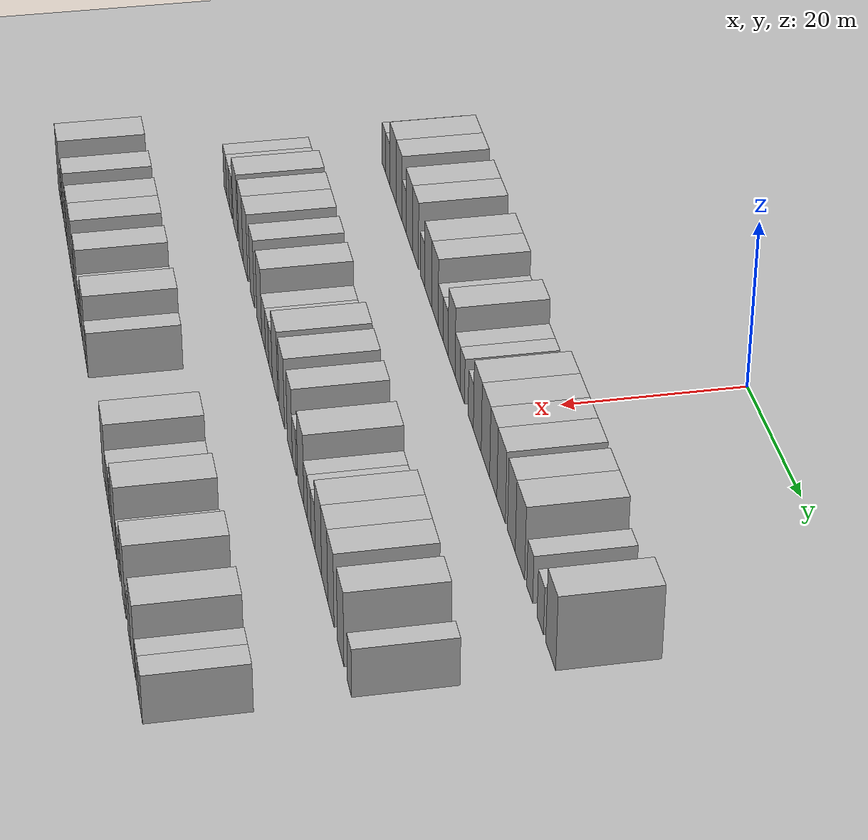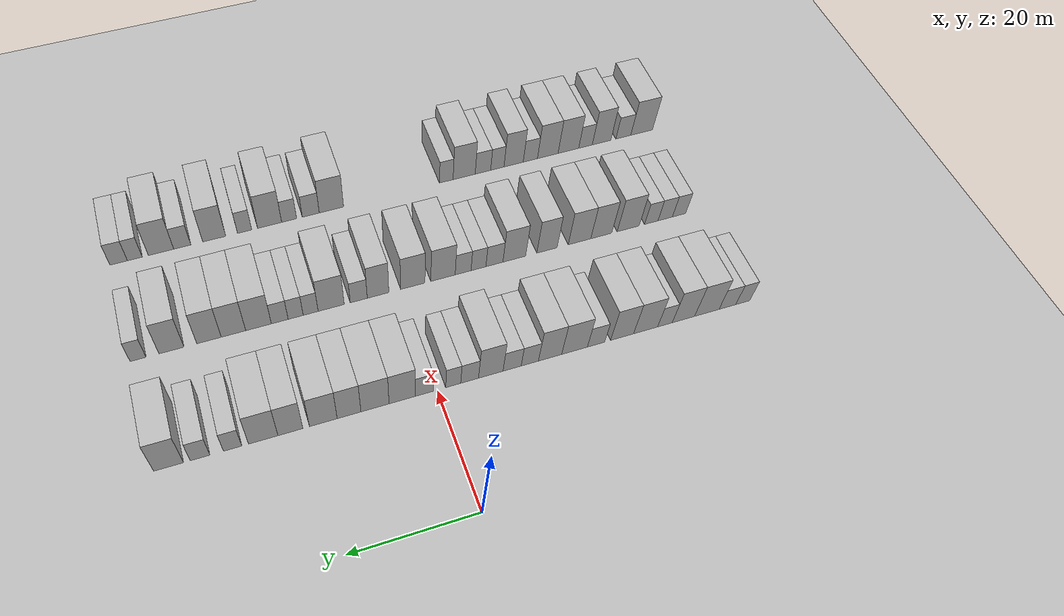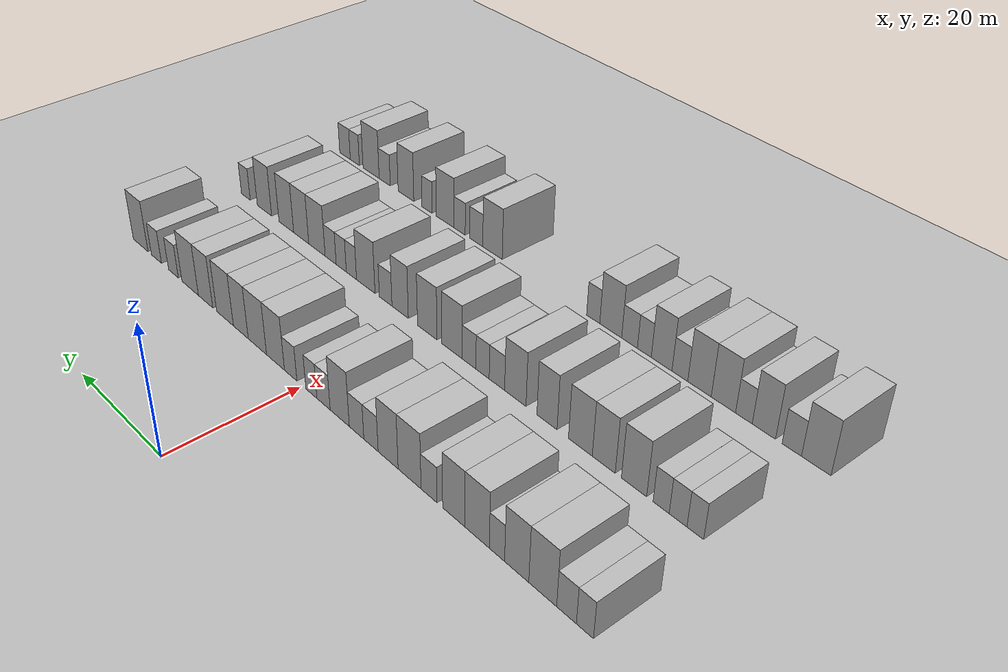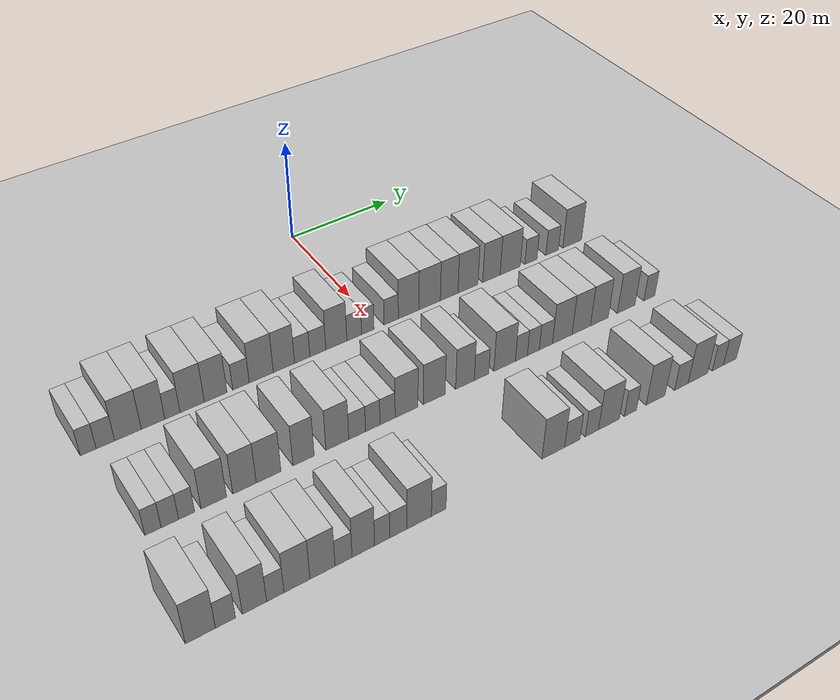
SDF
<sdf version="1.6">
 <world name="default">
  <include><name>ground_plane_1</name><uri>model://HANNAS_ground_plane</uri></include>
  <include>
   <name>ground_plane_2</name>
   <uri>model://HANNAS_ground_plane</uri>
   <pose>100 0 0  0 0 0</pose>
  </include>
  <model name="building_47">
   <static>1</static>
   <pose>25.0000 -51.4652 0 0.000000 0.000000 0.000000</pose>
   <link name="link">
    <pose>0 0 3.00 0 0 0</pose>
    <collision name="collision"><geometry><box><size>10.0000 2.5151 6.0000</size></box></geometry></collision>
    <visual name="visual">
     <cast_shadows>0</cast_shadows>
     <geometry><box><size>10.0000 2.5151 6.0000</size></box></geometry>
     <material>
      <script>
       <uri>model://HANNAS_wall/materials/scripts</uri>
       <uri>model://HANNAS_wall/materials/textures</uri>
       <name>vrc/HANNAS_wall</name>
      </script>
     </material>
    </visual>
   </link>
  </model>
  <model name="building_48">
   <static>1</static>
   <pose>25.0000 -48.7273 0 0.000000 0.000000 0.000000</pose>
   <link name="link">
    <pose>0 0 3.00 0 0 0</pose>
    <collision name="collision"><geometry><box><size>10.0000 2.9607 6.0000</size></box></geometry></collision>
    <visual name="visual">
     <cast_shadows>0</cast_shadows>
     <geometry><box><size>10.0000 2.9607 6.0000</size></box></geometry>
     <material>
      <script>
       <uri>model://HANNAS_wall/materials/scripts</uri>
       <uri>model://HANNAS_wall/materials/textures</uri>
       <name>vrc/HANNAS_wall</name>
      </script>
     </material>
    </visual>
   </link>
  </model>
  <model name="building_49">
   <static>1</static>
   <pose>25.0000 -45.0810 0 0.000000 0.000000 0.000000</pose>
   <link name="link">
    <pose>0 0 4.50 0 0 0</pose>
    <collision name="collision"><geometry><box><size>10.0000 4.3319 9.0000</size></box></geometry></collision>
    <visual name="visual">
     <cast_shadows>0</cast_shadows>
     <geometry><box><size>10.0000 4.3319 9.0000</size></box></geometry>
     <material>
      <script>
       <uri>model://HANNAS_wall/materials/scripts</uri>
       <uri>model://HANNAS_wall/materials/textures</uri>
       <name>vrc/HANNAS_wall</name>
      </script>
     </material>
    </visual>
   </link>
  </model>
  <model name="building_50">
   <static>1</static>
   <pose>25.0000 -40.9678 0 0.000000 0.000000 0.000000</pose>
   <link name="link">
    <pose>0 0 4.50 0 0 0</pose>
    <collision name="collision"><geometry><box><size>10.0000 3.8946 9.0000</size></box></geometry></collision>
    <visual name="visual">
     <cast_shadows>0</cast_shadows>
     <geometry><box><size>10.0000 3.8946 9.0000</size></box></geometry>
     <material>
      <script>
       <uri>model://HANNAS_wall/materials/scripts</uri>
       <uri>model://HANNAS_wall/materials/textures</uri>
       <name>vrc/HANNAS_wall</name>
      </script>
     </material>
    </visual>
   </link>
  </model>
  <model name="building_51">
   <static>1</static>
   <pose>25.0000 -37.7538 0 0.000000 0.000000 0.000000</pose>
   <link name="link">
    <pose>0 0 3.00 0 0 0</pose>
    <collision name="collision"><geometry><box><size>10.0000 2.5332 6.0000</size></box></geometry></collision>
    <visual name="visual">
     <cast_shadows>0</cast_shadows>
     <geometry><box><size>10.0000 2.5332 6.0000</size></box></geometry>
     <material>
      <script>
       <uri>model://HANNAS_wall/materials/scripts</uri>
       <uri>model://HANNAS_wall/materials/textures</uri>
       <name>vrc/HANNAS_wall</name>
      </script>
     </material>
    </visual>
   </link>
  </model>
  <model name="building_52">
   <static>1</static>
   <pose>25.0000 -34.4127 0 0.000000 0.000000 0.000000</pose>
   <link name="link">
    <pose>0 0 4.50 0 0 0</pose>
    <collision name="collision"><geometry><box><size>10.0000 4.1491 9.0000</size></box></geometry></collision>
    <visual name="visual">
     <cast_shadows>0</cast_shadows>
     <geometry><box><size>10.0000 4.1491 9.0000</size></box></geometry>
     <material>
      <script>
       <uri>model://HANNAS_wall/materials/scripts</uri>
       <uri>model://HANNAS_wall/materials/textures</uri>
       <name>vrc/HANNAS_wall</name>
      </script>
     </material>
    </visual>
   </link>
  </model>
  <model name="building_53">
   <static>1</static>
   <pose>25.0000 -30.3759 0 0.000000 0.000000 0.000000</pose>
   <link name="link">
    <pose>0 0 4.50 0 0 0</pose>
    <collision name="collision"><geometry><box><size>10.0000 3.9244 9.0000</size></box></geometry></collision>
    <visual name="visual">
     <cast_shadows>0</cast_shadows>
     <geometry><box><size>10.0000 3.9244 9.0000</size></box></geometry>
     <material>
      <script>
       <uri>model://HANNAS_wall/materials/scripts</uri>
       <uri>model://HANNAS_wall/materials/textures</uri>
       <name>vrc/HANNAS_wall</name>
      </script>
     </material>
    </visual>
   </link>
  </model>
  <model name="building_54">
   <static>1</static>
   <pose>25.0000 -25.9550 0 0.000000 0.000000 0.000000</pose>
   <link name="link">
    <pose>0 0 3.00 0 0 0</pose>
    <collision name="collision"><geometry><box><size>10.0000 2.9175 6.0000</size></box></geometry></collision>
    <visual name="visual">
     <cast_shadows>0</cast_shadows>
     <geometry><box><size>10.0000 2.9175 6.0000</size></box></geometry>
     <material>
      <script>
       <uri>model://HANNAS_wall/materials/scripts</uri>
       <uri>model://HANNAS_wall/materials/textures</uri>
       <name>vrc/HANNAS_wall</name>
      </script>
     </material>
    </visual>
   </link>
  </model>
  <model name="building_55">
   <static>1</static>
   <pose>25.0000 -22.3386 0 0.000000 0.000000 0.000000</pose>
   <link name="link">
    <pose>0 0 4.50 0 0 0</pose>
    <collision name="collision"><geometry><box><size>10.0000 4.3151 9.0000</size></box></geometry></collision>
    <visual name="visual">
     <cast_shadows>0</cast_shadows>
     <geometry><box><size>10.0000 4.3151 9.0000</size></box></geometry>
     <material>
      <script>
       <uri>model://HANNAS_wall/materials/scripts</uri>
       <uri>model://HANNAS_wall/materials/textures</uri>
       <name>vrc/HANNAS_wall</name>
      </script>
     </material>
    </visual>
   </link>
  </model>
  <model name="building_56">
   <static>1</static>
   <pose>25.0000 -18.2436 0 0.000000 0.000000 0.000000</pose>
   <link name="link">
    <pose>0 0 4.50 0 0 0</pose>
    <collision name="collision"><geometry><box><size>10.0000 3.8750 9.0000</size></box></geometry></collision>
    <visual name="visual">
     <cast_shadows>0</cast_shadows>
     <geometry><box><size>10.0000 3.8750 9.0000</size></box></geometry>
     <material>
      <script>
       <uri>model://HANNAS_wall/materials/scripts</uri>
       <uri>model://HANNAS_wall/materials/textures</uri>
       <name>vrc/HANNAS_wall</name>
      </script>
     </material>
    </visual>
   </link>
  </model>
  <model name="building_57">
   <static>1</static>
   <pose>25.0000 -14.8809 0 0.000000 0.000000 0.000000</pose>
   <link name="link">
    <pose>0 0 3.00 0 0 0</pose>
    <collision name="collision"><geometry><box><size>10.0000 2.8504 6.0000</size></box></geometry></collision>
    <visual name="visual">
     <cast_shadows>0</cast_shadows>
     <geometry><box><size>10.0000 2.8504 6.0000</size></box></geometry>
     <material>
      <script>
       <uri>model://HANNAS_wall/materials/scripts</uri>
       <uri>model://HANNAS_wall/materials/textures</uri>
       <name>vrc/HANNAS_wall</name>
      </script>
     </material>
    </visual>
   </link>
  </model>
  <model name="building_58">
   <static>1</static>
   <pose>25.0000 -11.9682 0 0.000000 0.000000 0.000000</pose>
   <link name="link">
    <pose>0 0 3.00 0 0 0</pose>
    <collision name="collision"><geometry><box><size>10.0000 2.9750 6.0000</size></box></geometry></collision>
    <visual name="visual">
     <cast_shadows>0</cast_shadows>
     <geometry><box><size>10.0000 2.9750 6.0000</size></box></geometry>
     <material>
      <script>
       <uri>model://HANNAS_wall/materials/scripts</uri>
       <uri>model://HANNAS_wall/materials/textures</uri>
       <name>vrc/HANNAS_wall</name>
      </script>
     </material>
    </visual>
   </link>
  </model>
  <model name="building_59">
   <static>1</static>
   <pose>25.0000 -8.4832 0 0.000000 0.000000 0.000000</pose>
   <link name="link">
    <pose>0 0 4.50 0 0 0</pose>
    <collision name="collision"><geometry><box><size>10.0000 3.9950 9.0000</size></box></geometry></collision>
    <visual name="visual">
     <cast_shadows>0</cast_shadows>
     <geometry><box><size>10.0000 3.9950 9.0000</size></box></geometry>
     <material>
      <script>
       <uri>model://HANNAS_wall/materials/scripts</uri>
       <uri>model://HANNAS_wall/materials/textures</uri>
       <name>vrc/HANNAS_wall</name>
      </script>
     </material>
    </visual>
   </link>
  </model>
  <model name="building_60">
   <static>1</static>
   <pose>25.0000 -5.0542 0 0.000000 0.000000 0.000000</pose>
   <link name="link">
    <pose>0 0 3.00 0 0 0</pose>
    <collision name="collision"><geometry><box><size>10.0000 2.8629 6.0000</size></box></geometry></collision>
    <visual name="visual">
     <cast_shadows>0</cast_shadows>
     <geometry><box><size>10.0000 2.8629 6.0000</size></box></geometry>
     <material>
      <script>
       <uri>model://HANNAS_wall/materials/scripts</uri>
       <uri>model://HANNAS_wall/materials/textures</uri>
       <name>vrc/HANNAS_wall</name>
      </script>
     </material>
    </visual>
   </link>
  </model>
  <model name="building_61">
   <static>1</static>
   <pose>25.0000 -2.4190 0 0.000000 0.000000 0.000000</pose>
   <link name="link">
    <pose>0 0 3.00 0 0 0</pose>
    <collision name="collision"><geometry><box><size>10.0000 2.4077 6.0000</size></box></geometry></collision>
    <visual name="visual">
     <cast_shadows>0</cast_shadows>
     <geometry><box><size>10.0000 2.4077 6.0000</size></box></geometry>
     <material>
      <script>
       <uri>model://HANNAS_wall/materials/scripts</uri>
       <uri>model://HANNAS_wall/materials/textures</uri>
       <name>vrc/HANNAS_wall</name>
      </script>
     </material>
    </visual>
   </link>
  </model>
  <model name="building_62">
   <static>1</static>
   <pose>25.0000 2.1935 0 0.000000 0.000000 0.000000</pose>
   <link name="link">
    <pose>0 0 3.00 0 0 0</pose>
    <collision name="collision"><geometry><box><size>10.0000 2.8173 6.0000</size></box></geometry></collision>
    <visual name="visual">
     <cast_shadows>0</cast_shadows>
     <geometry><box><size>10.0000 2.8173 6.0000</size></box></geometry>
     <material>
      <script>
       <uri>model://HANNAS_wall/materials/scripts</uri>
       <uri>model://HANNAS_wall/materials/textures</uri>
       <name>vrc/HANNAS_wall</name>
      </script>
     </material>
    </visual>
   </link>
  </model>
  <model name="building_63">
   <static>1</static>
   <pose>25.0000 5.6832 0 0.000000 0.000000 0.000000</pose>
   <link name="link">
    <pose>0 0 4.50 0 0 0</pose>
    <collision name="collision"><geometry><box><size>10.0000 4.1620 9.0000</size></box></geometry></collision>
    <visual name="visual">
     <cast_shadows>0</cast_shadows>
     <geometry><box><size>10.0000 4.1620 9.0000</size></box></geometry>
     <material>
      <script>
       <uri>model://HANNAS_wall/materials/scripts</uri>
       <uri>model://HANNAS_wall/materials/textures</uri>
       <name>vrc/HANNAS_wall</name>
      </script>
     </material>
    </visual>
   </link>
  </model>
  <model name="building_64">
   <static>1</static>
   <pose>25.0000 9.9566 0 0.000000 0.000000 0.000000</pose>
   <link name="link">
    <pose>0 0 4.50 0 0 0</pose>
    <collision name="collision"><geometry><box><size>10.0000 4.3848 9.0000</size></box></geometry></collision>
    <visual name="visual">
     <cast_shadows>0</cast_shadows>
     <geometry><box><size>10.0000 4.3848 9.0000</size></box></geometry>
     <material>
      <script>
       <uri>model://HANNAS_wall/materials/scripts</uri>
       <uri>model://HANNAS_wall/materials/textures</uri>
       <name>vrc/HANNAS_wall</name>
      </script>
     </material>
    </visual>
   </link>
  </model>
  <model name="building_65">
   <static>1</static>
   <pose>25.0000 13.9862 0 0.000000 0.000000 0.000000</pose>
   <link name="link">
    <pose>0 0 4.50 0 0 0</pose>
    <collision name="collision"><geometry><box><size>10.0000 3.6744 9.0000</size></box></geometry></collision>
    <visual name="visual">
     <cast_shadows>0</cast_shadows>
     <geometry><box><size>10.0000 3.6744 9.0000</size></box></geometry>
     <material>
      <script>
       <uri>model://HANNAS_wall/materials/scripts</uri>
       <uri>model://HANNAS_wall/materials/textures</uri>
       <name>vrc/HANNAS_wall</name>
      </script>
     </material>
    </visual>
   </link>
  </model>
  <model name="building_66">
   <static>1</static>
   <pose>25.0000 17.9464 0 0.000000 0.000000 0.000000</pose>
   <link name="link">
    <pose>0 0 4.50 0 0 0</pose>
    <collision name="collision"><geometry><box><size>10.0000 4.2461 9.0000</size></box></geometry></collision>
    <visual name="visual">
     <cast_shadows>0</cast_shadows>
     <geometry><box><size>10.0000 4.2461 9.0000</size></box></geometry>
     <material>
      <script>
       <uri>model://HANNAS_wall/materials/scripts</uri>
       <uri>model://HANNAS_wall/materials/textures</uri>
       <name>vrc/HANNAS_wall</name>
      </script>
     </material>
    </visual>
   </link>
  </model>
  <model name="building_67">
   <static>1</static>
   <pose>25.0000 22.9572 0 0.000000 0.000000 0.000000</pose>
   <link name="link">
    <pose>0 0 4.50 0 0 0</pose>
    <collision name="collision"><geometry><box><size>10.0000 3.7754 9.0000</size></box></geometry></collision>
    <visual name="visual">
     <cast_shadows>0</cast_shadows>
     <geometry><box><size>10.0000 3.7754 9.0000</size></box></geometry>
     <material>
      <script>
       <uri>model://HANNAS_wall/materials/scripts</uri>
       <uri>model://HANNAS_wall/materials/textures</uri>
       <name>vrc/HANNAS_wall</name>
      </script>
     </material>
    </visual>
   </link>
  </model>
  <model name="building_68">
   <static>1</static>
   <pose>25.0000 27.0579 0 0.000000 0.000000 0.000000</pose>
   <link name="link">
    <pose>0 0 4.50 0 0 0</pose>
    <collision name="collision"><geometry><box><size>10.0000 4.4261 9.0000</size></box></geometry></collision>
    <visual name="visual">
     <cast_shadows>0</cast_shadows>
     <geometry><box><size>10.0000 4.4261 9.0000</size></box></geometry>
     <material>
      <script>
       <uri>model://HANNAS_wall/materials/scripts</uri>
       <uri>model://HANNAS_wall/materials/textures</uri>
       <name>vrc/HANNAS_wall</name>
      </script>
     </material>
    </visual>
   </link>
  </model>
  <model name="building_69">
   <static>1</static>
   <pose>25.0000 31.6316 0 0.000000 0.000000 0.000000</pose>
   <link name="link">
    <pose>0 0 3.00 0 0 0</pose>
    <collision name="collision"><geometry><box><size>10.0000 2.7215 6.0000</size></box></geometry></collision>
    <visual name="visual">
     <cast_shadows>0</cast_shadows>
     <geometry><box><size>10.0000 2.7215 6.0000</size></box></geometry>
     <material>
      <script>
       <uri>model://HANNAS_wall/materials/scripts</uri>
       <uri>model://HANNAS_wall/materials/textures</uri>
       <name>vrc/HANNAS_wall</name>
      </script>
     </material>
    </visual>
   </link>
  </model>
  <model name="building_70">
   <static>1</static>
   <pose>25.0000 36.4275 0 0.000000 0.000000 0.000000</pose>
   <link name="link">
    <pose>0 0 3.00 0 0 0</pose>
    <collision name="collision"><geometry><box><size>10.0000 2.8701 6.0000</size></box></geometry></collision>
    <visual name="visual">
     <cast_shadows>0</cast_shadows>
     <geometry><box><size>10.0000 2.8701 6.0000</size></box></geometry>
     <material>
      <script>
       <uri>model://HANNAS_wall/materials/scripts</uri>
       <uri>model://HANNAS_wall/materials/textures</uri>
       <name>vrc/HANNAS_wall</name>
      </script>
     </material>
    </visual>
   </link>
  </model>
  <model name="building_71">
   <static>1</static>
   <pose>25.0000 41.0288 0 0.000000 0.000000 0.000000</pose>
   <link name="link">
    <pose>0 0 4.50 0 0 0</pose>
    <collision name="collision"><geometry><box><size>10.0000 4.3326 9.0000</size></box></geometry></collision>
    <visual name="visual">
     <cast_shadows>0</cast_shadows>
     <geometry><box><size>10.0000 4.3326 9.0000</size></box></geometry>
     <material>
      <script>
       <uri>model://HANNAS_wall/materials/scripts</uri>
       <uri>model://HANNAS_wall/materials/textures</uri>
       <name>vrc/HANNAS_wall</name>
      </script>
     </material>
    </visual>
   </link>
  </model>
  <model name="building_170">
   <static>1</static>
   <pose>44.0000 -49.4758 0 0.000000 0.000000 0.000000</pose>
   <link name="link">
    <pose>0 0 3.00 0 0 0</pose>
    <collision name="collision"><geometry><box><size>10.0000 2.4759 6.0000</size></box></geometry></collision>
    <visual name="visual">
     <cast_shadows>0</cast_shadows>
     <geometry><box><size>10.0000 2.4759 6.0000</size></box></geometry>
     <material>
      <script>
       <uri>model://HANNAS_wall/materials/scripts</uri>
       <uri>model://HANNAS_wall/materials/textures</uri>
       <name>vrc/HANNAS_wall</name>
      </script>
     </material>
    </visual>
   </link>
  </model>
  <model name="building_171">
   <static>1</static>
   <pose>44.0000 -46.8938 0 0.000000 0.000000 0.000000</pose>
   <link name="link">
    <pose>0 0 3.00 0 0 0</pose>
    <collision name="collision"><geometry><box><size>10.0000 2.6882 6.0000</size></box></geometry></collision>
    <visual name="visual">
     <cast_shadows>0</cast_shadows>
     <geometry><box><size>10.0000 2.6882 6.0000</size></box></geometry>
     <material>
      <script>
       <uri>model://HANNAS_wall/materials/scripts</uri>
       <uri>model://HANNAS_wall/materials/textures</uri>
       <name>vrc/HANNAS_wall</name>
      </script>
     </material>
    </visual>
   </link>
  </model>
  <model name="building_172">
   <static>1</static>
   <pose>44.0000 -44.3092 0 0.000000 0.000000 0.000000</pose>
   <link name="link">
    <pose>0 0 3.00 0 0 0</pose>
    <collision name="collision"><geometry><box><size>10.0000 2.4809 6.0000</size></box></geometry></collision>
    <visual name="visual">
     <cast_shadows>0</cast_shadows>
     <geometry><box><size>10.0000 2.4809 6.0000</size></box></geometry>
     <material>
      <script>
       <uri>model://HANNAS_wall/materials/scripts</uri>
       <uri>model://HANNAS_wall/materials/textures</uri>
       <name>vrc/HANNAS_wall</name>
      </script>
     </material>
    </visual>
   </link>
  </model>
  <model name="building_173">
   <static>1</static>
   <pose>44.0000 -40.0476 0 0.000000 0.000000 0.000000</pose>
   <link name="link">
    <pose>0 0 4.50 0 0 0</pose>
    <collision name="collision"><geometry><box><size>10.0000 4.0423 9.0000</size></box></geometry></collision>
    <visual name="visual">
     <cast_shadows>0</cast_shadows>
     <geometry><box><size>10.0000 4.0423 9.0000</size></box></geometry>
     <material>
      <script>
       <uri>model://HANNAS_wall/materials/scripts</uri>
       <uri>model://HANNAS_wall/materials/textures</uri>
       <name>vrc/HANNAS_wall</name>
      </script>
     </material>
    </visual>
   </link>
  </model>
  <model name="building_174">
   <static>1</static>
   <pose>44.0000 -35.1211 0 0.000000 0.000000 0.000000</pose>
   <link name="link">
    <pose>0 0 4.50 0 0 0</pose>
    <collision name="collision"><geometry><box><size>10.0000 3.8106 9.0000</size></box></geometry></collision>
    <visual name="visual">
     <cast_shadows>0</cast_shadows>
     <geometry><box><size>10.0000 3.8106 9.0000</size></box></geometry>
     <material>
      <script>
       <uri>model://HANNAS_wall/materials/scripts</uri>
       <uri>model://HANNAS_wall/materials/textures</uri>
       <name>vrc/HANNAS_wall</name>
      </script>
     </material>
    </visual>
   </link>
  </model>
  <model name="building_175">
   <static>1</static>
   <pose>44.0000 -31.1748 0 0.000000 0.000000 0.000000</pose>
   <link name="link">
    <pose>0 0 4.50 0 0 0</pose>
    <collision name="collision"><geometry><box><size>10.0000 4.0821 9.0000</size></box></geometry></collision>
    <visual name="visual">
     <cast_shadows>0</cast_shadows>
     <geometry><box><size>10.0000 4.0821 9.0000</size></box></geometry>
     <material>
      <script>
       <uri>model://HANNAS_wall/materials/scripts</uri>
       <uri>model://HANNAS_wall/materials/textures</uri>
       <name>vrc/HANNAS_wall</name>
      </script>
     </material>
    </visual>
   </link>
  </model>
  <model name="building_176">
   <static>1</static>
   <pose>44.0000 -25.3289 0 0.000000 0.000000 0.000000</pose>
   <link name="link">
    <pose>0 0 4.50 0 0 0</pose>
    <collision name="collision"><geometry><box><size>10.0000 3.6097 9.0000</size></box></geometry></collision>
    <visual name="visual">
     <cast_shadows>0</cast_shadows>
     <geometry><box><size>10.0000 3.6097 9.0000</size></box></geometry>
     <material>
      <script>
       <uri>model://HANNAS_wall/materials/scripts</uri>
       <uri>model://HANNAS_wall/materials/textures</uri>
       <name>vrc/HANNAS_wall</name>
      </script>
     </material>
    </visual>
   </link>
  </model>
  <model name="building_177">
   <static>1</static>
   <pose>44.0000 -19.5255 0 0.000000 0.000000 0.000000</pose>
   <link name="link">
    <pose>0 0 4.50 0 0 0</pose>
    <collision name="collision"><geometry><box><size>10.0000 3.9970 9.0000</size></box></geometry></collision>
    <visual name="visual">
     <cast_shadows>0</cast_shadows>
     <geometry><box><size>10.0000 3.9970 9.0000</size></box></geometry>
     <material>
      <script>
       <uri>model://HANNAS_wall/materials/scripts</uri>
       <uri>model://HANNAS_wall/materials/textures</uri>
       <name>vrc/HANNAS_wall</name>
      </script>
     </material>
    </visual>
   </link>
  </model>
  <model name="building_178">
   <static>1</static>
   <pose>44.0000 -16.0411 0 0.000000 0.000000 0.000000</pose>
   <link name="link">
    <pose>0 0 3.00 0 0 0</pose>
    <collision name="collision"><geometry><box><size>10.0000 2.9718 6.0000</size></box></geometry></collision>
    <visual name="visual">
     <cast_shadows>0</cast_shadows>
     <geometry><box><size>10.0000 2.9718 6.0000</size></box></geometry>
     <material>
      <script>
       <uri>model://HANNAS_wall/materials/scripts</uri>
       <uri>model://HANNAS_wall/materials/textures</uri>
       <name>vrc/HANNAS_wall</name>
      </script>
     </material>
    </visual>
   </link>
  </model>
  <model name="building_179">
   <static>1</static>
   <pose>44.0000 -13.2609 0 0.000000 0.000000 0.000000</pose>
   <link name="link">
    <pose>0 0 3.00 0 0 0</pose>
    <collision name="collision"><geometry><box><size>10.0000 2.5887 6.0000</size></box></geometry></collision>
    <visual name="visual">
     <cast_shadows>0</cast_shadows>
     <geometry><box><size>10.0000 2.5887 6.0000</size></box></geometry>
     <material>
      <script>
       <uri>model://HANNAS_wall/materials/scripts</uri>
       <uri>model://HANNAS_wall/materials/textures</uri>
       <name>vrc/HANNAS_wall</name>
      </script>
     </material>
    </visual>
   </link>
  </model>
  <model name="building_180">
   <static>1</static>
   <pose>44.0000 -10.5929 0 0.000000 0.000000 0.000000</pose>
   <link name="link">
    <pose>0 0 3.00 0 0 0</pose>
    <collision name="collision"><geometry><box><size>10.0000 2.7473 6.0000</size></box></geometry></collision>
    <visual name="visual">
     <cast_shadows>0</cast_shadows>
     <geometry><box><size>10.0000 2.7473 6.0000</size></box></geometry>
     <material>
      <script>
       <uri>model://HANNAS_wall/materials/scripts</uri>
       <uri>model://HANNAS_wall/materials/textures</uri>
       <name>vrc/HANNAS_wall</name>
      </script>
     </material>
    </visual>
   </link>
  </model>
  <model name="building_181">
   <static>1</static>
   <pose>44.0000 -7.1259 0 0.000000 0.000000 0.000000</pose>
   <link name="link">
    <pose>0 0 4.50 0 0 0</pose>
    <collision name="collision"><geometry><box><size>10.0000 4.1867 9.0000</size></box></geometry></collision>
    <visual name="visual">
     <cast_shadows>0</cast_shadows>
     <geometry><box><size>10.0000 4.1867 9.0000</size></box></geometry>
     <material>
      <script>
       <uri>model://HANNAS_wall/materials/scripts</uri>
       <uri>model://HANNAS_wall/materials/textures</uri>
       <name>vrc/HANNAS_wall</name>
      </script>
     </material>
    </visual>
   </link>
  </model>
  <model name="building_182">
   <static>1</static>
   <pose>44.0000 -1.9696 0 0.000000 0.000000 0.000000</pose>
   <link name="link">
    <pose>0 0 4.50 0 0 0</pose>
    <collision name="collision"><geometry><box><size>10.0000 4.1259 9.0000</size></box></geometry></collision>
    <visual name="visual">
     <cast_shadows>0</cast_shadows>
     <geometry><box><size>10.0000 4.1259 9.0000</size></box></geometry>
     <material>
      <script>
       <uri>model://HANNAS_wall/materials/scripts</uri>
       <uri>model://HANNAS_wall/materials/textures</uri>
       <name>vrc/HANNAS_wall</name>
      </script>
     </material>
    </visual>
   </link>
  </model>
  <model name="building_183">
   <static>1</static>
   <pose>44.0000 3.9028 0 0.000000 0.000000 0.000000</pose>
   <link name="link">
    <pose>0 0 4.50 0 0 0</pose>
    <collision name="collision"><geometry><box><size>10.0000 3.6188 9.0000</size></box></geometry></collision>
    <visual name="visual">
     <cast_shadows>0</cast_shadows>
     <geometry><box><size>10.0000 3.6188 9.0000</size></box></geometry>
     <material>
      <script>
       <uri>model://HANNAS_wall/materials/scripts</uri>
       <uri>model://HANNAS_wall/materials/textures</uri>
       <name>vrc/HANNAS_wall</name>
      </script>
     </material>
    </visual>
   </link>
  </model>
  <model name="building_184">
   <static>1</static>
   <pose>44.0000 7.1322 0 0.000000 0.000000 0.000000</pose>
   <link name="link">
    <pose>0 0 3.00 0 0 0</pose>
    <collision name="collision"><geometry><box><size>10.0000 2.8400 6.0000</size></box></geometry></collision>
    <visual name="visual">
     <cast_shadows>0</cast_shadows>
     <geometry><box><size>10.0000 2.8400 6.0000</size></box></geometry>
     <material>
      <script>
       <uri>model://HANNAS_wall/materials/scripts</uri>
       <uri>model://HANNAS_wall/materials/textures</uri>
       <name>vrc/HANNAS_wall</name>
      </script>
     </material>
    </visual>
   </link>
  </model>
  <model name="building_185">
   <static>1</static>
   <pose>44.0000 11.7082 0 0.000000 0.000000 0.000000</pose>
   <link name="link">
    <pose>0 0 4.50 0 0 0</pose>
    <collision name="collision"><geometry><box><size>10.0000 4.3120 9.0000</size></box></geometry></collision>
    <visual name="visual">
     <cast_shadows>0</cast_shadows>
     <geometry><box><size>10.0000 4.3120 9.0000</size></box></geometry>
     <material>
      <script>
       <uri>model://HANNAS_wall/materials/scripts</uri>
       <uri>model://HANNAS_wall/materials/textures</uri>
       <name>vrc/HANNAS_wall</name>
      </script>
     </material>
    </visual>
   </link>
  </model>
  <model name="building_186">
   <static>1</static>
   <pose>44.0000 15.0847 0 0.000000 0.000000 0.000000</pose>
   <link name="link">
    <pose>0 0 3.00 0 0 0</pose>
    <collision name="collision"><geometry><box><size>10.0000 2.4410 6.0000</size></box></geometry></collision>
    <visual name="visual">
     <cast_shadows>0</cast_shadows>
     <geometry><box><size>10.0000 2.4410 6.0000</size></box></geometry>
     <material>
      <script>
       <uri>model://HANNAS_wall/materials/scripts</uri>
       <uri>model://HANNAS_wall/materials/textures</uri>
       <name>vrc/HANNAS_wall</name>
      </script>
     </material>
    </visual>
   </link>
  </model>
  <model name="building_187">
   <static>1</static>
   <pose>44.0000 17.5305 0 0.000000 0.000000 0.000000</pose>
   <link name="link">
    <pose>0 0 3.00 0 0 0</pose>
    <collision name="collision"><geometry><box><size>10.0000 2.4507 6.0000</size></box></geometry></collision>
    <visual name="visual">
     <cast_shadows>0</cast_shadows>
     <geometry><box><size>10.0000 2.4507 6.0000</size></box></geometry>
     <material>
      <script>
       <uri>model://HANNAS_wall/materials/scripts</uri>
       <uri>model://HANNAS_wall/materials/textures</uri>
       <name>vrc/HANNAS_wall</name>
      </script>
     </material>
    </visual>
   </link>
  </model>
  <model name="building_188">
   <static>1</static>
   <pose>44.0000 20.1143 0 0.000000 0.000000 0.000000</pose>
   <link name="link">
    <pose>0 0 3.00 0 0 0</pose>
    <collision name="collision"><geometry><box><size>10.0000 2.7168 6.0000</size></box></geometry></collision>
    <visual name="visual">
     <cast_shadows>0</cast_shadows>
     <geometry><box><size>10.0000 2.7168 6.0000</size></box></geometry>
     <material>
      <script>
       <uri>model://HANNAS_wall/materials/scripts</uri>
       <uri>model://HANNAS_wall/materials/textures</uri>
       <name>vrc/HANNAS_wall</name>
      </script>
     </material>
    </visual>
   </link>
  </model>
  <model name="building_189">
   <static>1</static>
   <pose>44.0000 23.5403 0 0.000000 0.000000 0.000000</pose>
   <link name="link">
    <pose>0 0 4.50 0 0 0</pose>
    <collision name="collision"><geometry><box><size>10.0000 4.1352 9.0000</size></box></geometry></collision>
    <visual name="visual">
     <cast_shadows>0</cast_shadows>
     <geometry><box><size>10.0000 4.1352 9.0000</size></box></geometry>
     <material>
      <script>
       <uri>model://HANNAS_wall/materials/scripts</uri>
       <uri>model://HANNAS_wall/materials/textures</uri>
       <name>vrc/HANNAS_wall</name>
      </script>
     </material>
    </visual>
   </link>
  </model>
  <model name="building_190">
   <static>1</static>
   <pose>44.0000 27.5612 0 0.000000 0.000000 0.000000</pose>
   <link name="link">
    <pose>0 0 4.50 0 0 0</pose>
    <collision name="collision"><geometry><box><size>10.0000 3.9066 9.0000</size></box></geometry></collision>
    <visual name="visual">
     <cast_shadows>0</cast_shadows>
     <geometry><box><size>10.0000 3.9066 9.0000</size></box></geometry>
     <material>
      <script>
       <uri>model://HANNAS_wall/materials/scripts</uri>
       <uri>model://HANNAS_wall/materials/textures</uri>
       <name>vrc/HANNAS_wall</name>
      </script>
     </material>
    </visual>
   </link>
  </model>
  <model name="building_191">
   <static>1</static>
   <pose>44.0000 31.4539 0 0.000000 0.000000 0.000000</pose>
   <link name="link">
    <pose>0 0 4.50 0 0 0</pose>
    <collision name="collision"><geometry><box><size>10.0000 3.8789 9.0000</size></box></geometry></collision>
    <visual name="visual">
     <cast_shadows>0</cast_shadows>
     <geometry><box><size>10.0000 3.8789 9.0000</size></box></geometry>
     <material>
      <script>
       <uri>model://HANNAS_wall/materials/scripts</uri>
       <uri>model://HANNAS_wall/materials/textures</uri>
       <name>vrc/HANNAS_wall</name>
      </script>
     </material>
    </visual>
   </link>
  </model>
  <model name="building_192">
   <static>1</static>
   <pose>44.0000 37.3536 0 0.000000 0.000000 0.000000</pose>
   <link name="link">
    <pose>0 0 4.50 0 0 0</pose>
    <collision name="collision"><geometry><box><size>10.0000 3.9204 9.0000</size></box></geometry></collision>
    <visual name="visual">
     <cast_shadows>0</cast_shadows>
     <geometry><box><size>10.0000 3.9204 9.0000</size></box></geometry>
     <material>
      <script>
       <uri>model://HANNAS_wall/materials/scripts</uri>
       <uri>model://HANNAS_wall/materials/textures</uri>
       <name>vrc/HANNAS_wall</name>
      </script>
     </material>
    </visual>
   </link>
  </model>
  <model name="building_193">
   <static>1</static>
   <pose>44.0000 42.5469 0 0.000000 0.000000 0.000000</pose>
   <link name="link">
    <pose>0 0 3.00 0 0 0</pose>
    <collision name="collision"><geometry><box><size>10.0000 2.4663 6.0000</size></box></geometry></collision>
    <visual name="visual">
     <cast_shadows>0</cast_shadows>
     <geometry><box><size>10.0000 2.4663 6.0000</size></box></geometry>
     <material>
      <script>
       <uri>model://HANNAS_wall/materials/scripts</uri>
       <uri>model://HANNAS_wall/materials/textures</uri>
       <name>vrc/HANNAS_wall</name>
      </script>
     </material>
    </visual>
   </link>
  </model>
  <model name="building_290">
   <static>1</static>
   <pose>63.0000 -51.3066 0 0.000000 0.000000 0.000000</pose>
   <link name="link">
    <pose>0 0 4.50 0 0 0</pose>
    <collision name="collision"><geometry><box><size>10.0000 4.3030 9.0000</size></box></geometry></collision>
    <visual name="visual">
     <cast_shadows>0</cast_shadows>
     <geometry><box><size>10.0000 4.3030 9.0000</size></box></geometry>
     <material>
      <script>
       <uri>model://HANNAS_wall/materials/scripts</uri>
       <uri>model://HANNAS_wall/materials/textures</uri>
       <name>vrc/HANNAS_wall</name>
      </script>
     </material>
    </visual>
   </link>
  </model>
  <model name="building_291">
   <static>1</static>
   <pose>63.0000 -47.7044 0 0.000000 0.000000 0.000000</pose>
   <link name="link">
    <pose>0 0 3.00 0 0 0</pose>
    <collision name="collision"><geometry><box><size>10.0000 2.9012 6.0000</size></box></geometry></collision>
    <visual name="visual">
     <cast_shadows>0</cast_shadows>
     <geometry><box><size>10.0000 2.9012 6.0000</size></box></geometry>
     <material>
      <script>
       <uri>model://HANNAS_wall/materials/scripts</uri>
       <uri>model://HANNAS_wall/materials/textures</uri>
       <name>vrc/HANNAS_wall</name>
      </script>
     </material>
    </visual>
   </link>
  </model>
  <model name="building_292">
   <static>1</static>
   <pose>63.0000 -43.4492 0 0.000000 0.000000 0.000000</pose>
   <link name="link">
    <pose>0 0 4.50 0 0 0</pose>
    <collision name="collision"><geometry><box><size>10.0000 3.6093 9.0000</size></box></geometry></collision>
    <visual name="visual">
     <cast_shadows>0</cast_shadows>
     <geometry><box><size>10.0000 3.6093 9.0000</size></box></geometry>
     <material>
      <script>
       <uri>model://HANNAS_wall/materials/scripts</uri>
       <uri>model://HANNAS_wall/materials/textures</uri>
       <name>vrc/HANNAS_wall</name>
      </script>
     </material>
    </visual>
   </link>
  </model>
  <model name="building_293">
   <static>1</static>
   <pose>63.0000 -40.3307 0 0.000000 0.000000 0.000000</pose>
   <link name="link">
    <pose>0 0 3.00 0 0 0</pose>
    <collision name="collision"><geometry><box><size>10.0000 2.6278 6.0000</size></box></geometry></collision>
    <visual name="visual">
     <cast_shadows>0</cast_shadows>
     <geometry><box><size>10.0000 2.6278 6.0000</size></box></geometry>
     <material>
      <script>
       <uri>model://HANNAS_wall/materials/scripts</uri>
       <uri>model://HANNAS_wall/materials/textures</uri>
       <name>vrc/HANNAS_wall</name>
      </script>
     </material>
    </visual>
   </link>
  </model>
  <model name="building_294">
   <static>1</static>
   <pose>63.0000 -37.0337 0 0.000000 0.000000 0.000000</pose>
   <link name="link">
    <pose>0 0 4.50 0 0 0</pose>
    <collision name="collision"><geometry><box><size>10.0000 3.9662 9.0000</size></box></geometry></collision>
    <visual name="visual">
     <cast_shadows>0</cast_shadows>
     <geometry><box><size>10.0000 3.9662 9.0000</size></box></geometry>
     <material>
      <script>
       <uri>model://HANNAS_wall/materials/scripts</uri>
       <uri>model://HANNAS_wall/materials/textures</uri>
       <name>vrc/HANNAS_wall</name>
      </script>
     </material>
    </visual>
   </link>
  </model>
  <model name="building_295">
   <static>1</static>
   <pose>63.0000 -33.0850 0 0.000000 0.000000 0.000000</pose>
   <link name="link">
    <pose>0 0 4.50 0 0 0</pose>
    <collision name="collision"><geometry><box><size>10.0000 3.9311 9.0000</size></box></geometry></collision>
    <visual name="visual">
     <cast_shadows>0</cast_shadows>
     <geometry><box><size>10.0000 3.9311 9.0000</size></box></geometry>
     <material>
      <script>
       <uri>model://HANNAS_wall/materials/scripts</uri>
       <uri>model://HANNAS_wall/materials/textures</uri>
       <name>vrc/HANNAS_wall</name>
      </script>
     </material>
    </visual>
   </link>
  </model>
  <model name="building_296">
   <static>1</static>
   <pose>63.0000 -29.7660 0 0.000000 0.000000 0.000000</pose>
   <link name="link">
    <pose>0 0 3.00 0 0 0</pose>
    <collision name="collision"><geometry><box><size>10.0000 2.7071 6.0000</size></box></geometry></collision>
    <visual name="visual">
     <cast_shadows>0</cast_shadows>
     <geometry><box><size>10.0000 2.7071 6.0000</size></box></geometry>
     <material>
      <script>
       <uri>model://HANNAS_wall/materials/scripts</uri>
       <uri>model://HANNAS_wall/materials/textures</uri>
       <name>vrc/HANNAS_wall</name>
      </script>
     </material>
    </visual>
   </link>
  </model>
  <model name="building_297">
   <static>1</static>
   <pose>63.0000 -26.5988 0 0.000000 0.000000 0.000000</pose>
   <link name="link">
    <pose>0 0 4.50 0 0 0</pose>
    <collision name="collision"><geometry><box><size>10.0000 3.6273 9.0000</size></box></geometry></collision>
    <visual name="visual">
     <cast_shadows>0</cast_shadows>
     <geometry><box><size>10.0000 3.6273 9.0000</size></box></geometry>
     <material>
      <script>
       <uri>model://HANNAS_wall/materials/scripts</uri>
       <uri>model://HANNAS_wall/materials/textures</uri>
       <name>vrc/HANNAS_wall</name>
      </script>
     </material>
    </visual>
   </link>
  </model>
  <model name="building_298">
   <static>1</static>
   <pose>63.0000 -23.5402 0 0.000000 0.000000 0.000000</pose>
   <link name="link">
    <pose>0 0 3.00 0 0 0</pose>
    <collision name="collision"><geometry><box><size>10.0000 2.4898 6.0000</size></box></geometry></collision>
    <visual name="visual">
     <cast_shadows>0</cast_shadows>
     <geometry><box><size>10.0000 2.4898 6.0000</size></box></geometry>
     <material>
      <script>
       <uri>model://HANNAS_wall/materials/scripts</uri>
       <uri>model://HANNAS_wall/materials/textures</uri>
       <name>vrc/HANNAS_wall</name>
      </script>
     </material>
    </visual>
   </link>
  </model>
  <model name="building_299">
   <static>1</static>
   <pose>63.0000 -20.8537 0 0.000000 0.000000 0.000000</pose>
   <link name="link">
    <pose>0 0 3.00 0 0 0</pose>
    <collision name="collision"><geometry><box><size>10.0000 2.8833 6.0000</size></box></geometry></collision>
    <visual name="visual">
     <cast_shadows>0</cast_shadows>
     <geometry><box><size>10.0000 2.8833 6.0000</size></box></geometry>
     <material>
      <script>
       <uri>model://HANNAS_wall/materials/scripts</uri>
       <uri>model://HANNAS_wall/materials/textures</uri>
       <name>vrc/HANNAS_wall</name>
      </script>
     </material>
    </visual>
   </link>
  </model>
  <model name="building_300">
   <static>1</static>
   <pose>63.0000 -17.3623 0 0.000000 0.000000 0.000000</pose>
   <link name="link">
    <pose>0 0 4.50 0 0 0</pose>
    <collision name="collision"><geometry><box><size>10.0000 4.0994 9.0000</size></box></geometry></collision>
    <visual name="visual">
     <cast_shadows>0</cast_shadows>
     <geometry><box><size>10.0000 4.0994 9.0000</size></box></geometry>
     <material>
      <script>
       <uri>model://HANNAS_wall/materials/scripts</uri>
       <uri>model://HANNAS_wall/materials/textures</uri>
       <name>vrc/HANNAS_wall</name>
      </script>
     </material>
    </visual>
   </link>
  </model>
  <model name="building_301">
   <static>1</static>
   <pose>63.0000 -14.0576 0 0.000000 0.000000 0.000000</pose>
   <link name="link">
    <pose>0 0 3.00 0 0 0</pose>
    <collision name="collision"><geometry><box><size>10.0000 2.5102 6.0000</size></box></geometry></collision>
    <visual name="visual">
     <cast_shadows>0</cast_shadows>
     <geometry><box><size>10.0000 2.5102 6.0000</size></box></geometry>
     <material>
      <script>
       <uri>model://HANNAS_wall/materials/scripts</uri>
       <uri>model://HANNAS_wall/materials/textures</uri>
       <name>vrc/HANNAS_wall</name>
      </script>
     </material>
    </visual>
   </link>
  </model>
  <model name="building_302">
   <static>1</static>
   <pose>63.0000 6.6272 0 0.000000 0.000000 0.000000</pose>
   <link name="link">
    <pose>0 0 4.50 0 0 0</pose>
    <collision name="collision"><geometry><box><size>10.0000 4.2865 9.0000</size></box></geometry></collision>
    <visual name="visual">
     <cast_shadows>0</cast_shadows>
     <geometry><box><size>10.0000 4.2865 9.0000</size></box></geometry>
     <material>
      <script>
       <uri>model://HANNAS_wall/materials/scripts</uri>
       <uri>model://HANNAS_wall/materials/textures</uri>
       <name>vrc/HANNAS_wall</name>
      </script>
     </material>
    </visual>
   </link>
  </model>
  <model name="building_303">
   <static>1</static>
   <pose>63.0000 10.2544 0 0.000000 0.000000 0.000000</pose>
   <link name="link">
    <pose>0 0 3.00 0 0 0</pose>
    <collision name="collision"><geometry><box><size>10.0000 2.9678 6.0000</size></box></geometry></collision>
    <visual name="visual">
     <cast_shadows>0</cast_shadows>
     <geometry><box><size>10.0000 2.9678 6.0000</size></box></geometry>
     <material>
      <script>
       <uri>model://HANNAS_wall/materials/scripts</uri>
       <uri>model://HANNAS_wall/materials/textures</uri>
       <name>vrc/HANNAS_wall</name>
      </script>
     </material>
    </visual>
   </link>
  </model>
  <model name="building_304">
   <static>1</static>
   <pose>63.0000 14.0396 0 0.000000 0.000000 0.000000</pose>
   <link name="link">
    <pose>0 0 3.00 0 0 0</pose>
    <collision name="collision"><geometry><box><size>10.0000 2.6028 6.0000</size></box></geometry></collision>
    <visual name="visual">
     <cast_shadows>0</cast_shadows>
     <geometry><box><size>10.0000 2.6028 6.0000</size></box></geometry>
     <material>
      <script>
       <uri>model://HANNAS_wall/materials/scripts</uri>
       <uri>model://HANNAS_wall/materials/textures</uri>
       <name>vrc/HANNAS_wall</name>
      </script>
     </material>
    </visual>
   </link>
  </model>
  <model name="building_305">
   <static>1</static>
   <pose>63.0000 17.4216 0 0.000000 0.000000 0.000000</pose>
   <link name="link">
    <pose>0 0 4.50 0 0 0</pose>
    <collision name="collision"><geometry><box><size>10.0000 4.1611 9.0000</size></box></geometry></collision>
    <visual name="visual">
     <cast_shadows>0</cast_shadows>
     <geometry><box><size>10.0000 4.1611 9.0000</size></box></geometry>
     <material>
      <script>
       <uri>model://HANNAS_wall/materials/scripts</uri>
       <uri>model://HANNAS_wall/materials/textures</uri>
       <name>vrc/HANNAS_wall</name>
      </script>
     </material>
    </visual>
   </link>
  </model>
  <model name="building_306">
   <static>1</static>
   <pose>63.0000 21.7217 0 0.000000 0.000000 0.000000</pose>
   <link name="link">
    <pose>0 0 3.00 0 0 0</pose>
    <collision name="collision"><geometry><box><size>10.0000 2.4393 6.0000</size></box></geometry></collision>
    <visual name="visual">
     <cast_shadows>0</cast_shadows>
     <geometry><box><size>10.0000 2.4393 6.0000</size></box></geometry>
     <material>
      <script>
       <uri>model://HANNAS_wall/materials/scripts</uri>
       <uri>model://HANNAS_wall/materials/textures</uri>
       <name>vrc/HANNAS_wall</name>
      </script>
     </material>
    </visual>
   </link>
  </model>
  <model name="building_307">
   <static>1</static>
   <pose>63.0000 26.8960 0 0.000000 0.000000 0.000000</pose>
   <link name="link">
    <pose>0 0 4.50 0 0 0</pose>
    <collision name="collision"><geometry><box><size>10.0000 3.9092 9.0000</size></box></geometry></collision>
    <visual name="visual">
     <cast_shadows>0</cast_shadows>
     <geometry><box><size>10.0000 3.9092 9.0000</size></box></geometry>
     <material>
      <script>
       <uri>model://HANNAS_wall/materials/scripts</uri>
       <uri>model://HANNAS_wall/materials/textures</uri>
       <name>vrc/HANNAS_wall</name>
      </script>
     </material>
    </visual>
   </link>
  </model>
  <model name="building_308">
   <static>1</static>
   <pose>63.0000 32.2860 0 0.000000 0.000000 0.000000</pose>
   <link name="link">
    <pose>0 0 3.00 0 0 0</pose>
    <collision name="collision"><geometry><box><size>10.0000 2.8709 6.0000</size></box></geometry></collision>
    <visual name="visual">
     <cast_shadows>0</cast_shadows>
     <geometry><box><size>10.0000 2.8709 6.0000</size></box></geometry>
     <material>
      <script>
       <uri>model://HANNAS_wall/materials/scripts</uri>
       <uri>model://HANNAS_wall/materials/textures</uri>
       <name>vrc/HANNAS_wall</name>
      </script>
     </material>
    </visual>
   </link>
  </model>
  <model name="building_309">
   <static>1</static>
   <pose>63.0000 35.8367 0 0.000000 0.000000 0.000000</pose>
   <link name="link">
    <pose>0 0 4.50 0 0 0</pose>
    <collision name="collision"><geometry><box><size>10.0000 4.2304 9.0000</size></box></geometry></collision>
    <visual name="visual">
     <cast_shadows>0</cast_shadows>
     <geometry><box><size>10.0000 4.2304 9.0000</size></box></geometry>
     <material>
      <script>
       <uri>model://HANNAS_wall/materials/scripts</uri>
       <uri>model://HANNAS_wall/materials/textures</uri>
       <name>vrc/HANNAS_wall</name>
      </script>
     </material>
    </visual>
   </link>
  </model>
  <model name="building_310">
   <static>1</static>
   <pose>63.0000 40.1756 0 0.000000 0.000000 0.000000</pose>
   <link name="link">
    <pose>0 0 3.00 0 0 0</pose>
    <collision name="collision"><geometry><box><size>10.0000 2.4475 6.0000</size></box></geometry></collision>
    <visual name="visual">
     <cast_shadows>0</cast_shadows>
     <geometry><box><size>10.0000 2.4475 6.0000</size></box></geometry>
     <material>
      <script>
       <uri>model://HANNAS_wall/materials/scripts</uri>
       <uri>model://HANNAS_wall/materials/textures</uri>
       <name>vrc/HANNAS_wall</name>
      </script>
     </material>
    </visual>
   </link>
  </model>
  <model name="building_311">
   <static>1</static>
   <pose>63.0000 42.8380 0 0.000000 0.000000 0.000000</pose>
   <link name="link">
    <pose>0 0 3.00 0 0 0</pose>
    <collision name="collision"><geometry><box><size>10.0000 2.8771 6.0000</size></box></geometry></collision>
    <visual name="visual">
     <cast_shadows>0</cast_shadows>
     <geometry><box><size>10.0000 2.8771 6.0000</size></box></geometry>
     <material>
      <script>
       <uri>model://HANNAS_wall/materials/scripts</uri>
       <uri>model://HANNAS_wall/materials/textures</uri>
       <name>vrc/HANNAS_wall</name>
      </script>
     </material>
    </visual>
   </link>
  </model>
 </world>
</sdf>
